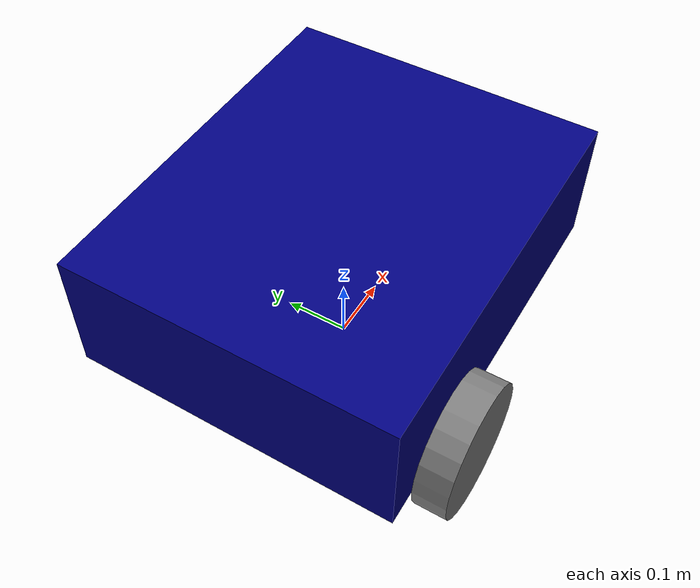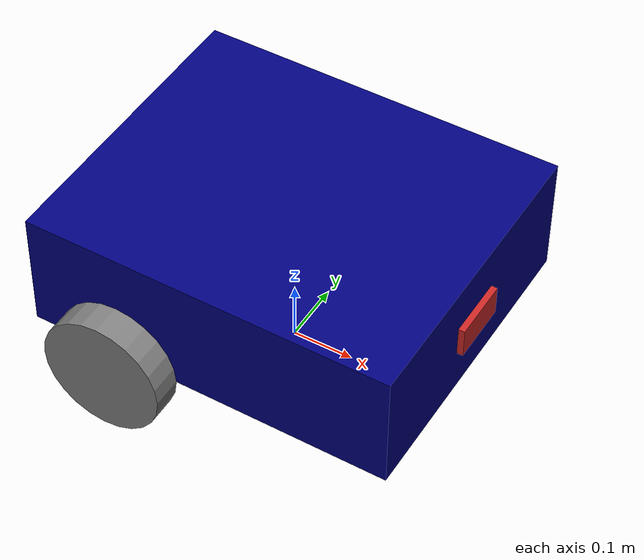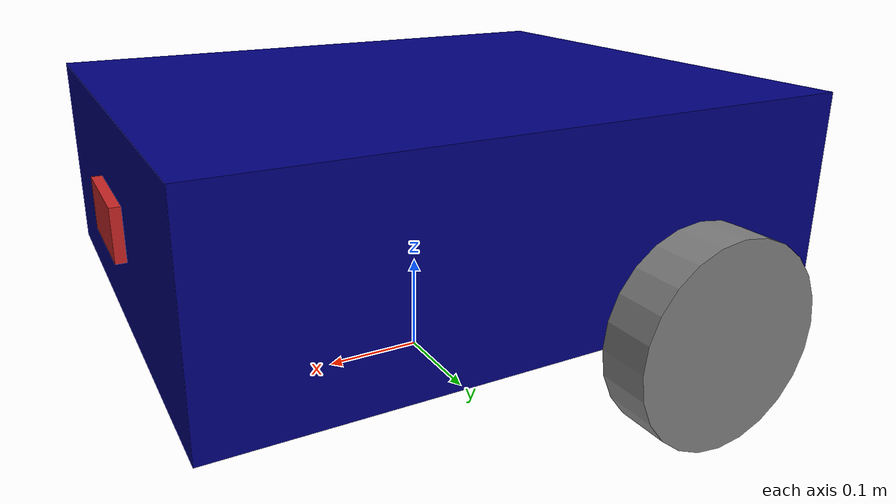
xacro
<?xml version="1.0"?>
<robot name="my_robot" xmlns:xacro="http://www.ros.org/wiki/xacro">

    <xacro:include filename="common_properties.xacro" />
    <xacro:include filename="mobile_base.xacro" />
    <xacro:include filename="mobile_base_gazebo.xacro" />

    <xacro:include filename="camera.xacro" />

</robot>

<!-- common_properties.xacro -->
<robot xmlns:xacro="http://www.ros.org/wiki/xacro">
    <xacro:property name="blue_color" value="0 0 0.5 1" />

    <material name="blue">
        <color rgba="${blue_color}" />
    </material>

    <material name="orange">
        <color rgba="1 0.7 0 1" />
    </material>

    <material name="yellow">
        <color rgba="0.5 0.7 0 1" />
    </material>

    <material name="grey">
        <color rgba="0.5 0.5 0.5 1" />
    </material>

    <xacro:macro name="box_inertia" params="m l w h xyz rpy">
        <inertial>
            <origin xyz="${xyz}" rpy="${rpy}" />
            <mass value="${m}" />
            <inertia ixx="${(m/12) * (h*h + l*l)}" ixy="0" ixz="0"
                     iyy="${(m/12) * (w*w + l*l)}" iyz="0"
                     izz="${m/12*(w*w + h*h)}" />
        </inertial>
    </xacro:macro>

    <xacro:macro name="cylinder_inertia" params="m r l xyz rpy">
        <inertial>
            <origin xyz="${xyz}" rpy="${rpy}" />
            <mass value="${m}" />
            <inertia ixx="${m/12*(3*r*r + l*l)}" ixy="0" ixz="0"
                     iyy="${m/12*(3*r*r + l*l)}" iyz="0"
                     izz="${m/12*(r*r)}" />
        </inertial>
    </xacro:macro>

    <xacro:macro name="sphere_inertia" params="m r xyz rpy">
        <inertial>
            <origin xyz="${xyz}" rpy="${rpy}" />
            <mass value="${m}" />
            <inertia ixx="${(2/5) * m * r * r}" ixy="0" ixz="0"
                     iyy="${(2/5)*m*r*r}" iyz="0"
                     izz="${(2/5)*m*r*r}" />
        </inertial>
    </xacro:macro>

</robot>

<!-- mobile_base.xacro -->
<robot xmlns:xacro="http://www.ros.org/wiki/xacro">
    <xacro:property name="base_length" value="0.6" />
    <xacro:property name="base_width" value="0.5" />
    <xacro:property name="base_height" value="0.2" />
    <xacro:property name="wheel_radius" value="0.1" />
    <xacro:property name="wheel_length" value="0.05" />

    <link name="base_footprint" />

    <link name="base_link">
        <visual>
            <geometry>
                <box size="${base_length} ${base_width} ${base_height}" />
            </geometry>
            <origin xyz="0 0 ${base_height/2}" rpy="0 0 0" />
            <material name="blue" />
        </visual>
        <collision>
            <geometry>
                <box size="${base_length} ${base_width} ${base_height}" />
            </geometry>
            <origin xyz="0 0 ${base_height/2}" rpy="0 0 0" />
            <material name="blue" />
        </collision>
        <xacro:box_inertia m="5.0" l="${2*base_length}" w="${2*base_width}" h="${2*base_height}"
                           xyz="0 0 ${base_height/2.0}" rpy="0 0 0" />
    </link>

    <xacro:macro name="wheel_link" params="prefix">
        <link name="${prefix}_wheel_link">
            <visual>
                <geometry>
                    <cylinder radius="${wheel_radius}" length="${wheel_length}" />
                </geometry>
                <origin xyz="0 0 0" rpy="${pi/2.0} 0 0" />
                <material name="grey" />
            </visual>
            <collision>
                <geometry>
                    <cylinder radius="${wheel_radius}" length="${wheel_length}" />
                </geometry>
                <origin xyz="0 0 0" rpy="${pi/2.0} 0 0" />
                <material name="grey" />
            </collision>

            <xacro:cylinder_inertia m="1.0" r="${2*wheel_radius}" l="${2*base_height}"
                                    xyz="0 0 0" rpy="${pi/2.0} 0 0" />
        </link>
    </xacro:macro>

    <xacro:wheel_link prefix="right" />
    <xacro:wheel_link prefix="left" />

    <link name="caster_wheel_link">
        <visual>
            <geometry>
                <sphere radius="${wheel_radius/2.0}" />
            </geometry>
            <origin xyz="0 0 0" rpy="0 0 0" />
            <material name="grey" />
        </visual>
        <collision>
            <geometry>
                <sphere radius="${wheel_radius/2.0}" />
            </geometry>
            <origin xyz="0 0 0" rpy="0 0 0" />
            <material name="grey" />
        </collision>
        <xacro:sphere_inertia m="0.5" r="${2*wheel_radius/2.0}"
                              xyz="0 0 0" rpy="0 0 0" />
    </link>

    <joint name="base_joint" type="fixed">
        <parent link="base_footprint" />
        <child link="base_link" />
        <origin xyz="0 0 ${base_height/2}" rpy="0 0 0"/>
    </joint>

    <joint name="base_right_wheel_joint" type="continuous">
        <parent link="base_link" />
        <child link="right_wheel_link" />
        <origin xyz="${-base_length / 4.0} ${(base_width + wheel_length)/2} 0" rpy="0 0 0" />
        <axis xyz="0 1 0" />
    </joint>

    <joint name="base_left_wheel_joint" type="continuous">
        <parent link="base_link" />
        <child link="left_wheel_link" />
        <origin xyz="${-base_length / 4.0} ${-(base_width + wheel_length)/2} 0" rpy="0 0 0" />
        <axis xyz="0 1 0" />
    </joint>

    <joint name="base_caster_wheel_joint" type="fixed">
        <parent link="base_link" />
        <child link="caster_wheel_link" />
        <origin xyz="${base_length / 3.0} 0 ${-wheel_radius/2}" rpy="0 0 0" />
    </joint>

</robot>

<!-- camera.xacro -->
<robot xmlns:xacro="http://www.ros.org/wiki/xacro">

    <xacro:property name="camera_length" value="0.01" />
    <xacro:property name="camera_width" value="0.1" />
    <xacro:property name="camera_height" value="0.05" />
    <xacro:property name="camera_mass" value="0.1" />

    <link name="camera_link">
        <visual>
            <geometry>
                <box size="${camera_length} ${camera_width} ${camera_height}" />
                <material name="grey" />
            </geometry>
        </visual>
        <collision>
                <geometry>
                    <box size="0.01 0.1 0.05" />
                </geometry>
        </collision>
        <xacro:box_inertia m="${camera_mass}" l="${camera_length}" w="${camera_width}" h="${camera_height}"
                            xyz ="0 0 0" rpy="0 0 0" />
    </link>

    <joint name="base_camera_joint" type="fixed">
        <parent link="base_link" />
        <child link="camera_link" />
        <origin xyz="${(base_length + camera_length) / 2.0} 0 ${base_height / 2.0}" rpy="0 0 0" />
    </joint>

    <link name="camera_link_optical" />

    <joint name="camera_optical_joint" type="fixed">
        <!-- these values have to be these values otherwise the gazebo camera
            image won't be aligned properly with the frame it is supposedly
            originating from -->
        <origin xyz="0 0 0" rpy="${-pi/2} 0 ${-pi/2}"/>
        <parent link="camera_link"/>
        <child link="camera_link_optical"/>
    </joint>

    <gazebo reference="camera_link">
        <material>Gazebo/Red</material>
        <sensor name="camera_sensor" type="camera">
            <pose>0 0 0 0 0 0</pose>
            <visualize>true</visualize>
            <update_rate>10.0</update_rate>
            <plugin name="camera_controller" filename="libgazebo_ros_camera.so">
                <frame_name>camera_link</frame_name>
            </plugin>
        </sensor>
    </gazebo>

</robot>
